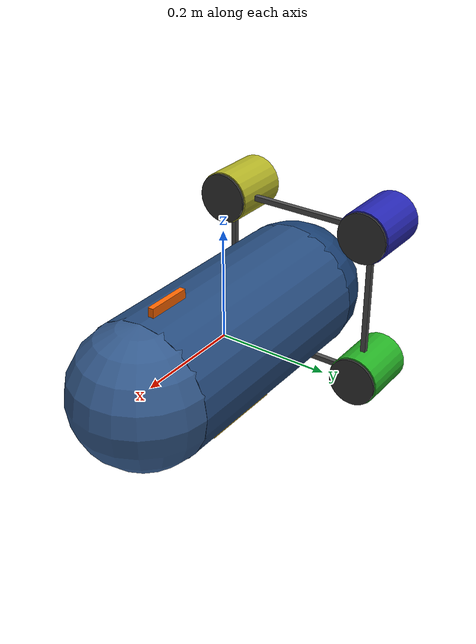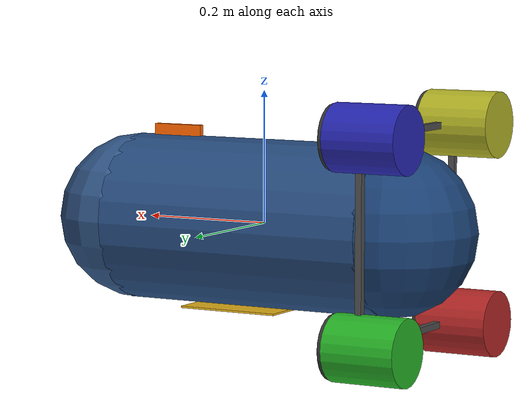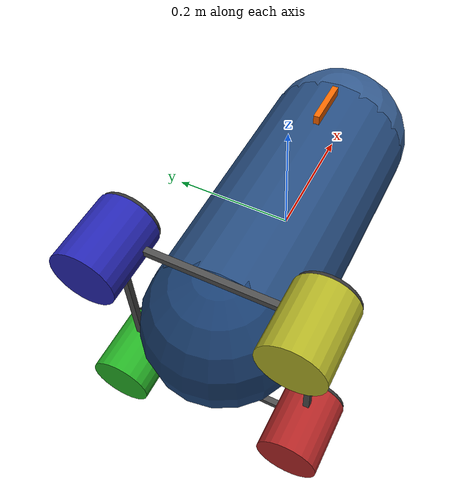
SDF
<?xml version="1.0" encoding="UTF-8"?>
<sdf version='1.9'>
  <model name='xudrone'>
    <pose>0 0 0 0 0 0</pose>
    <self_collide>false</self_collide>
    <static>false</static>

    <!--  Base link: torpedo hull                                      -->
    <!--  Hull: 17 in (0.432 m) long, 10 in (0.254 m) diameter        -->
    <!--  Total vehicle mass: 13 kg                                    -->
    <!--    Body (hull+electronics+battery): 11.624 kg                 -->
    <!--    4 × T200 thruster: 4 × 0.344 = 1.376 kg                   -->
    <!--  12V 30Ah LiFePO4 battery (~3.8 kg) placed 31 mm forward     -->
    <!--    of geometric center to balance rear thruster mass           -->
    <!--  ⇒ overall CG at model origin (symmetric)                     -->
    <link name="base_link">
      <inertial>
        <!-- CG shifted 31 mm forward to balance 4 rear thrusters -->
        <pose>0.031 0 0 0 0 0</pose>
        <mass>11.624</mass>
        <inertia>
          <!-- Solid cylinder approx: r=0.127 m, L=0.432 m, m=11.624 kg -->
          <!-- Ixx = m*r²/2,  Iyy = Izz = m*(3r²+L²)/12                -->
          <ixx>0.094</ixx>
          <ixy>0</ixy>
          <ixz>0</ixz>
          <iyy>0.228</iyy>
          <iyz>0</iyz>
          <izz>0.228</izz>
        </inertia>
      </inertial>
      <gravity>true</gravity>
      <velocity_decay/>

      <!-- Main hull cylinder (17 in long, 10 in diameter) -->
      <visual name="hull_visual">
        <pose>0 0 0 0 1.5707963 0</pose>
        <geometry>
          <cylinder>
            <radius>0.127</radius>
            <length>0.432</length>
          </cylinder>
        </geometry>
        <material>
          <ambient>0.15 0.30 0.50 1</ambient>
          <diffuse>0.15 0.30 0.50 1</diffuse>
          <specular>0.4 0.4 0.4 1</specular>
        </material>
      </visual>

      <!-- Nose dome (hemisphere at front) -->
      <visual name="nose_visual">
        <pose>0.216 0 0 0 0 0</pose>
        <geometry>
          <sphere>
            <radius>0.127</radius>
          </sphere>
        </geometry>
        <material>
          <ambient>0.20 0.35 0.55 1</ambient>
          <diffuse>0.20 0.35 0.55 1</diffuse>
          <specular>0.4 0.4 0.4 1</specular>
        </material>
      </visual>

      <!-- Tail cap (hemisphere at rear) -->
      <visual name="tail_visual">
        <pose>-0.216 0 0 0 0 0</pose>
        <geometry>
          <sphere>
            <radius>0.127</radius>
          </sphere>
        </geometry>
        <material>
          <ambient>0.10 0.25 0.45 1</ambient>
          <diffuse>0.10 0.25 0.45 1</diffuse>
          <specular>0.4 0.4 0.4 1</specular>
        </material>
      </visual>

      <!-- Forward heading marker (orange fin on top-front) -->
      <visual name="forward_marker">
        <pose>0.15 0 0.133 0 0 0</pose>
        <geometry>
          <box>
            <size>0.08 0.01 0.02</size>
          </box>
        </geometry>
        <material>
          <ambient>1.0 0.4 0.0 1</ambient>
          <diffuse>1.0 0.4 0.0 1</diffuse>
        </material>
      </visual>

      <!-- Battery bay marker (visible stripe, centered slightly forward) -->
      <visual name="battery_bay">
        <pose>0.031 0 -0.128 0 0 0</pose>
        <geometry>
          <box>
            <size>0.16 0.12 0.003</size>
          </box>
        </geometry>
        <material>
          <ambient>0.9 0.7 0.1 1</ambient>
          <diffuse>0.9 0.7 0.1 1</diffuse>
        </material>
      </visual>

      <!-- Thruster mounting frame (rear ring) -->
      <visual name="mount_ring_top">
        <pose>-0.24 0 0.15 0 0 0</pose>
        <geometry><box><size>0.01 0.30 0.01</size></box></geometry>
        <material><ambient>0.3 0.3 0.3 1</ambient><diffuse>0.3 0.3 0.3 1</diffuse></material>
      </visual>
      <visual name="mount_ring_bottom">
        <pose>-0.24 0 -0.15 0 0 0</pose>
        <geometry><box><size>0.01 0.30 0.01</size></box></geometry>
        <material><ambient>0.3 0.3 0.3 1</ambient><diffuse>0.3 0.3 0.3 1</diffuse></material>
      </visual>
      <visual name="mount_ring_port">
        <pose>-0.24 0.15 0 0 0 0</pose>
        <geometry><box><size>0.01 0.01 0.30</size></box></geometry>
        <material><ambient>0.3 0.3 0.3 1</ambient><diffuse>0.3 0.3 0.3 1</diffuse></material>
      </visual>
      <visual name="mount_ring_starboard">
        <pose>-0.24 -0.15 0 0 0 0</pose>
        <geometry><box><size>0.01 0.01 0.30</size></box></geometry>
        <material><ambient>0.3 0.3 0.3 1</ambient><diffuse>0.3 0.3 0.3 1</diffuse></material>
      </visual>

      <!-- Hull collision -->
      <collision name="hull_collision">
        <pose>0 0 0 0 1.5707963 0</pose>
        <geometry>
          <cylinder>
            <radius>0.127</radius>
            <length>0.50</length>
          </cylinder>
        </geometry>
        <surface>
          <contact>
            <ode>
              <min_depth>0.001</min_depth>
              <max_vel>0</max_vel>
            </ode>
          </contact>
          <friction><ode/></friction>
        </surface>
      </collision>

      <!-- ======== Sensors ======== -->

      <!-- IMU -->
      <sensor name="imu_sensor" type="imu">
        <gz_frame_id>base_link</gz_frame_id>
        <always_on>1</always_on>
        <update_rate>250</update_rate>
        <imu>
          <angular_velocity>
            <x><noise type="gaussian"><mean>0</mean><stddev>0.00018665</stddev>
                <dynamic_bias_stddev>3.8785e-05</dynamic_bias_stddev>
                <dynamic_bias_correlation_time>1000</dynamic_bias_correlation_time></noise></x>
            <y><noise type="gaussian"><mean>0</mean><stddev>0.00018665</stddev>
                <dynamic_bias_stddev>3.8785e-05</dynamic_bias_stddev>
                <dynamic_bias_correlation_time>1000</dynamic_bias_correlation_time></noise></y>
            <z><noise type="gaussian"><mean>0</mean><stddev>0.00018665</stddev>
                <dynamic_bias_stddev>3.8785e-05</dynamic_bias_stddev>
                <dynamic_bias_correlation_time>1000</dynamic_bias_correlation_time></noise></z>
          </angular_velocity>
          <linear_acceleration>
            <x><noise type="gaussian"><mean>0</mean><stddev>0.00186</stddev>
                <dynamic_bias_stddev>0.006</dynamic_bias_stddev>
                <dynamic_bias_correlation_time>300</dynamic_bias_correlation_time></noise></x>
            <y><noise type="gaussian"><mean>0</mean><stddev>0.00186</stddev>
                <dynamic_bias_stddev>0.006</dynamic_bias_stddev>
                <dynamic_bias_correlation_time>300</dynamic_bias_correlation_time></noise></y>
            <z><noise type="gaussian"><mean>0</mean><stddev>0.00186</stddev>
                <dynamic_bias_stddev>0.006</dynamic_bias_stddev>
                <dynamic_bias_correlation_time>300</dynamic_bias_correlation_time></noise></z>
          </linear_acceleration>
        </imu>
      </sensor>

      <!-- Pressure / depth -->
      <sensor name="air_pressure_sensor" type="air_pressure">
        <gz_frame_id>base_link</gz_frame_id>
        <always_on>1</always_on>
        <update_rate>50</update_rate>
        <air_pressure>
          <pressure>
            <noise type="gaussian">
              <mean>0</mean>
              <stddev>0.01</stddev>
            </noise>
          </pressure>
        </air_pressure>
      </sensor>

      <!-- Magnetometer -->
      <sensor name="magnetometer_sensor" type="magnetometer">
        <gz_frame_id>base_link</gz_frame_id>
        <always_on>1</always_on>
        <update_rate>100</update_rate>
        <magnetometer>
          <x><noise type="gaussian"><stddev>0.0001</stddev></noise></x>
          <y><noise type="gaussian"><stddev>0.0001</stddev></noise></y>
          <z><noise type="gaussian"><stddev>0.0001</stddev></noise></z>
        </magnetometer>
      </sensor>

      <!-- NavSat (GPS) -->
      <sensor name="navsat_sensor" type="navsat">
        <gz_frame_id>base_link</gz_frame_id>
        <always_on>1</always_on>
        <update_rate>30</update_rate>
      </sensor>
    </link>

    <!--  Blue Robotics T200 Thrusters (×4)                            -->
    <!--  Specs at 12 V: ~36 N fwd, ~28 N rev, ~2500 RPM max          -->
    <!--  Mass: 0.344 kg, OD: 100 mm, length: 113 mm                  -->
    <!--  Mounted at rear corners, thrust along +X (forward)           -->

    <!-- T200 #0: starboard-bottom -->
    <link name="rotor_0">
      <pose>-0.26 -0.15 -0.15 0 1.5707963 0</pose>
      <gravity>true</gravity>
      <self_collide>false</self_collide>
      <inertial>
        <mass>0.344</mass>
        <inertia>
          <ixx>4.3e-04</ixx>  <ixy>0</ixy>  <ixz>0</ixz>
          <iyy>5.8e-04</iyy>  <iyz>0</iyz>
          <izz>5.8e-04</izz>
        </inertia>
      </inertial>
      <visual name="rotor_0_housing">
        <geometry>
          <cylinder>
            <radius>0.05</radius>
            <length>0.113</length>
          </cylinder>
        </geometry>
        <material>
          <ambient>0.7 0.15 0.15 1</ambient>
          <diffuse>0.7 0.15 0.15 1</diffuse>
          <specular>0.3 0.3 0.3 1</specular>
        </material>
      </visual>
      <!-- Propeller guard ring -->
      <visual name="rotor_0_guard">
        <pose>0 0 0.06 0 0 0</pose>
        <geometry>
          <cylinder>
            <radius>0.048</radius>
            <length>0.005</length>
          </cylinder>
        </geometry>
        <material>
          <ambient>0.2 0.2 0.2 1</ambient>
          <diffuse>0.2 0.2 0.2 1</diffuse>
        </material>
      </visual>
    </link>
    <joint name="rotor_0_joint" type="revolute">
      <parent>base_link</parent>
      <child>rotor_0</child>
      <axis>
        <xyz>1 0 0</xyz>
        <limit><lower>-1e+16</lower><upper>1e+16</upper></limit>
        <dynamics><spring_reference>0</spring_reference><spring_stiffness>0</spring_stiffness></dynamics>
      </axis>
    </joint>

    <!-- T200 #1: port-bottom -->
    <link name="rotor_1">
      <pose>-0.26 0.15 -0.15 0 1.5707963 0</pose>
      <gravity>true</gravity>
      <self_collide>false</self_collide>
      <inertial>
        <mass>0.344</mass>
        <inertia>
          <ixx>4.3e-04</ixx>  <ixy>0</ixy>  <ixz>0</ixz>
          <iyy>5.8e-04</iyy>  <iyz>0</iyz>
          <izz>5.8e-04</izz>
        </inertia>
      </inertial>
      <visual name="rotor_1_housing">
        <geometry>
          <cylinder>
            <radius>0.05</radius>
            <length>0.113</length>
          </cylinder>
        </geometry>
        <material>
          <ambient>0.15 0.7 0.15 1</ambient>
          <diffuse>0.15 0.7 0.15 1</diffuse>
          <specular>0.3 0.3 0.3 1</specular>
        </material>
      </visual>
      <visual name="rotor_1_guard">
        <pose>0 0 0.06 0 0 0</pose>
        <geometry>
          <cylinder>
            <radius>0.048</radius>
            <length>0.005</length>
          </cylinder>
        </geometry>
        <material>
          <ambient>0.2 0.2 0.2 1</ambient>
          <diffuse>0.2 0.2 0.2 1</diffuse>
        </material>
      </visual>
    </link>
    <joint name="rotor_1_joint" type="revolute">
      <parent>base_link</parent>
      <child>rotor_1</child>
      <axis>
        <xyz>1 0 0</xyz>
        <limit><lower>-1e+16</lower><upper>1e+16</upper></limit>
        <dynamics><spring_reference>0</spring_reference><spring_stiffness>0</spring_stiffness></dynamics>
      </axis>
    </joint>

    <!-- T200 #2: port-top -->
    <link name="rotor_2">
      <pose>-0.26 0.15 0.15 0 1.5707963 0</pose>
      <gravity>true</gravity>
      <self_collide>false</self_collide>
      <inertial>
        <mass>0.344</mass>
        <inertia>
          <ixx>4.3e-04</ixx>  <ixy>0</ixy>  <ixz>0</ixz>
          <iyy>5.8e-04</iyy>  <iyz>0</iyz>
          <izz>5.8e-04</izz>
        </inertia>
      </inertial>
      <visual name="rotor_2_housing">
        <geometry>
          <cylinder>
            <radius>0.05</radius>
            <length>0.113</length>
          </cylinder>
        </geometry>
        <material>
          <ambient>0.15 0.15 0.7 1</ambient>
          <diffuse>0.15 0.15 0.7 1</diffuse>
          <specular>0.3 0.3 0.3 1</specular>
        </material>
      </visual>
      <visual name="rotor_2_guard">
        <pose>0 0 0.06 0 0 0</pose>
        <geometry>
          <cylinder>
            <radius>0.048</radius>
            <length>0.005</length>
          </cylinder>
        </geometry>
        <material>
          <ambient>0.2 0.2 0.2 1</ambient>
          <diffuse>0.2 0.2 0.2 1</diffuse>
        </material>
      </visual>
    </link>
    <joint name="rotor_2_joint" type="revolute">
      <parent>base_link</parent>
      <child>rotor_2</child>
      <axis>
        <xyz>1 0 0</xyz>
        <limit><lower>-1e+16</lower><upper>1e+16</upper></limit>
        <dynamics><spring_reference>0</spring_reference><spring_stiffness>0</spring_stiffness></dynamics>
      </axis>
    </joint>

    <!-- T200 #3: starboard-top -->
    <link name="rotor_3">
      <pose>-0.26 -0.15 0.15 0 1.5707963 0</pose>
      <gravity>true</gravity>
      <self_collide>false</self_collide>
      <inertial>
        <mass>0.344</mass>
        <inertia>
          <ixx>4.3e-04</ixx>  <ixy>0</ixy>  <ixz>0</ixz>
          <iyy>5.8e-04</iyy>  <iyz>0</iyz>
          <izz>5.8e-04</izz>
        </inertia>
      </inertial>
      <visual name="rotor_3_housing">
        <geometry>
          <cylinder>
            <radius>0.05</radius>
            <length>0.113</length>
          </cylinder>
        </geometry>
        <material>
          <ambient>0.7 0.7 0.15 1</ambient>
          <diffuse>0.7 0.7 0.15 1</diffuse>
          <specular>0.3 0.3 0.3 1</specular>
        </material>
      </visual>
      <visual name="rotor_3_guard">
        <pose>0 0 0.06 0 0 0</pose>
        <geometry>
          <cylinder>
            <radius>0.048</radius>
            <length>0.005</length>
          </cylinder>
        </geometry>
        <material>
          <ambient>0.2 0.2 0.2 1</ambient>
          <diffuse>0.2 0.2 0.2 1</diffuse>
        </material>
      </visual>
    </link>
    <joint name="rotor_3_joint" type="revolute">
      <parent>base_link</parent>
      <child>rotor_3</child>
      <axis>
        <xyz>1 0 0</xyz>
        <limit><lower>-1e+16</lower><upper>1e+16</upper></limit>
        <dynamics><spring_reference>0</spring_reference><spring_stiffness>0</spring_stiffness></dynamics>
      </axis>
    </joint>

    <!--  T200 motor model plugins                                     -->
    <!--  At 12 V: max ~2500 RPM (≈262 rad/s), ~36 N fwd thrust       -->
    <!--  motorConstant = 36 / 262² ≈ 5.25e-04                        -->
    <plugin filename="gz-sim-multicopter-motor-model-system"
            name="gz::sim::systems::MulticopterMotorModel">
      <jointName>rotor_0_joint</jointName>
      <linkName>rotor_0</linkName>
      <turningDirection>ccw</turningDirection>
      <timeConstantUp>0.02</timeConstantUp>
      <timeConstantDown>0.04</timeConstantDown>
      <maxRotVelocity>300.0</maxRotVelocity>
      <motorConstant>5.25e-04</motorConstant>
      <momentConstant>0.01</momentConstant>
      <commandSubTopic>command/motor_speed</commandSubTopic>
      <motorNumber>0</motorNumber>
      <rotorDragCoefficient>0.001</rotorDragCoefficient>
      <rollingMomentCoefficient>1e-06</rollingMomentCoefficient>
      <rotorVelocitySlowdownSim>10</rotorVelocitySlowdownSim>
      <motorType>velocity</motorType>
    </plugin>
    <plugin filename="gz-sim-multicopter-motor-model-system"
            name="gz::sim::systems::MulticopterMotorModel">
      <jointName>rotor_1_joint</jointName>
      <linkName>rotor_1</linkName>
      <turningDirection>ccw</turningDirection>
      <timeConstantUp>0.02</timeConstantUp>
      <timeConstantDown>0.04</timeConstantDown>
      <maxRotVelocity>300.0</maxRotVelocity>
      <motorConstant>5.25e-04</motorConstant>
      <momentConstant>0.01</momentConstant>
      <commandSubTopic>command/motor_speed</commandSubTopic>
      <motorNumber>1</motorNumber>
      <rotorDragCoefficient>0.001</rotorDragCoefficient>
      <rollingMomentCoefficient>1e-06</rollingMomentCoefficient>
      <rotorVelocitySlowdownSim>10</rotorVelocitySlowdownSim>
      <motorType>velocity</motorType>
    </plugin>
    <plugin filename="gz-sim-multicopter-motor-model-system"
            name="gz::sim::systems::MulticopterMotorModel">
      <jointName>rotor_2_joint</jointName>
      <linkName>rotor_2</linkName>
      <turningDirection>cw</turningDirection>
      <timeConstantUp>0.02</timeConstantUp>
      <timeConstantDown>0.04</timeConstantDown>
      <maxRotVelocity>300.0</maxRotVelocity>
      <motorConstant>5.25e-04</motorConstant>
      <momentConstant>0.01</momentConstant>
      <commandSubTopic>command/motor_speed</commandSubTopic>
      <motorNumber>2</motorNumber>
      <rotorDragCoefficient>0.001</rotorDragCoefficient>
      <rollingMomentCoefficient>1e-06</rollingMomentCoefficient>
      <rotorVelocitySlowdownSim>10</rotorVelocitySlowdownSim>
      <motorType>velocity</motorType>
    </plugin>
    <plugin filename="gz-sim-multicopter-motor-model-system"
            name="gz::sim::systems::MulticopterMotorModel">
      <jointName>rotor_3_joint</jointName>
      <linkName>rotor_3</linkName>
      <turningDirection>cw</turningDirection>
      <timeConstantUp>0.02</timeConstantUp>
      <timeConstantDown>0.04</timeConstantDown>
      <maxRotVelocity>300.0</maxRotVelocity>
      <motorConstant>5.25e-04</motorConstant>
      <momentConstant>0.01</momentConstant>
      <commandSubTopic>command/motor_speed</commandSubTopic>
      <motorNumber>3</motorNumber>
      <rotorDragCoefficient>0.001</rotorDragCoefficient>
      <rollingMomentCoefficient>1e-06</rollingMomentCoefficient>
      <rotorVelocitySlowdownSim>10</rotorVelocitySlowdownSim>
      <motorType>velocity</motorType>
    </plugin>

    <!--  Hydrodynamics: Fossen's 6-DOF model for marine craft        -->
    <!--  Vehicle: torpedo hull 0.432 m × 0.254 m Ø, 13 kg            -->
    <!--  Seawater ρ = 1025 kg/m³                                      -->
    <!--  Added mass — prolate spheroid Lamb k-factors (a/b ≈ 1.7):   -->
    <!--    surge  k₁=0.26 → xDotU = -k₁·ρ·V ≈ -1.5                  -->
    <!--    sway   k₂=0.66 → yDotV ≈ -15                              -->
    <!--    heave  same as sway (axisymmetric)                         -->
    <!--    pitch/yaw  ≈ -1.5 kg·m²                                   -->
    <!--  Quadratic drag  F = -C · |v| · v                             -->
    <!--    where C = 0.5·ρ·Cd·A                                       -->
    <!--    surge:  Cd=0.15, A_front=0.0507 m² → 3.9                   -->
    <!--    sway:   Cd=1.1,  A_side =0.155  m² → 87  (incl. T200s)    -->
    <!--  Linear drag (viscous skin friction, low-speed regime)        -->
    <plugin filename="gz-sim-hydrodynamics-system"
            name="gz::sim::systems::Hydrodynamics">
      <link_name>base_link</link_name>

      <!-- Added mass [kg] / [kg·m²] -->
      <xDotU>-1.5</xDotU>      <!-- surge  -->
      <yDotV>-15.0</yDotV>     <!-- sway   -->
      <zDotW>-15.0</zDotW>     <!-- heave  -->
      <kDotP>0</kDotP>         <!-- roll  (≈0, axisymmetric) -->
      <mDotQ>-1.5</mDotQ>      <!-- pitch  -->
      <nDotR>-1.5</nDotR>      <!-- yaw    -->

      <!-- Quadratic (form) drag: F = -C·|v|·v  [N·s²/m²] / [N·m·s²/rad²] -->
      <xUabsU>-3.9</xUabsU>    <!-- surge  (Cd=0.15, A_front=0.051 m²) -->
      <yVabsV>-87.0</yVabsV>   <!-- sway   (Cd=1.1,  A_side=0.155 m²) -->
      <zWabsW>-87.0</zWabsW>   <!-- heave  -->
      <kPabsP>-0.05</kPabsP>   <!-- roll   -->
      <mQabsQ>-10.0</mQabsQ>   <!-- pitch  (hull + T200 moment arms)   -->
      <nRabsR>-10.0</nRabsR>   <!-- yaw    -->

      <!-- Linear (viscous / skin-friction) drag  [N·s/m] / [N·m·s/rad] -->
      <xU>-1.5</xU>            <!-- surge  -->
      <yV>-5.0</yV>            <!-- sway   -->
      <zW>-5.0</zW>            <!-- heave  -->
      <kP>-0.1</kP>            <!-- roll   -->
      <mQ>-2.0</mQ>            <!-- pitch  -->
      <nR>-2.0</nR>            <!-- yaw    -->
    </plugin>

    <!--  VIO: Odometry publisher for external vision fusion           -->
    <plugin
      filename="gz-sim-odometry-publisher-system"
      name="gz::sim::systems::OdometryPublisher">
      <dimensions>3</dimensions>
    </plugin>

  </model>
</sdf>
